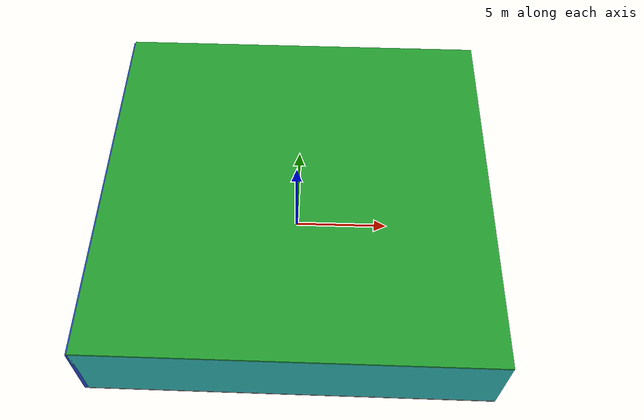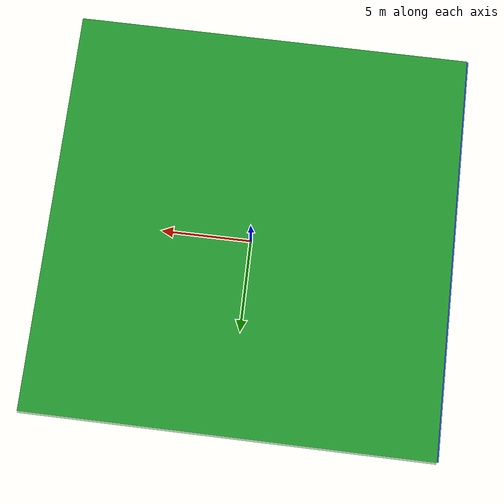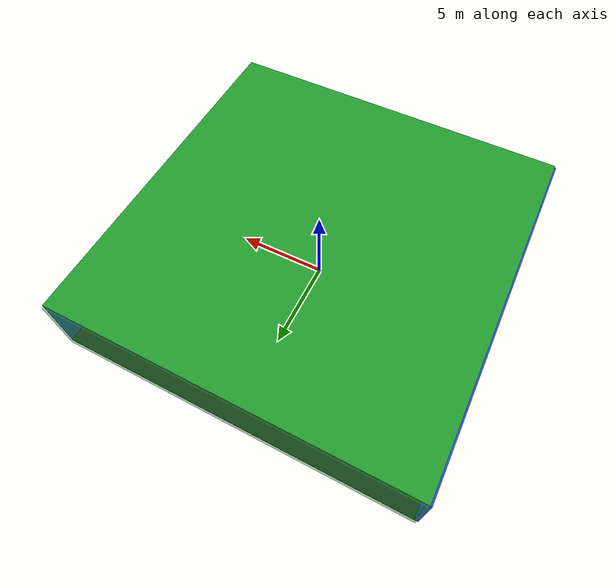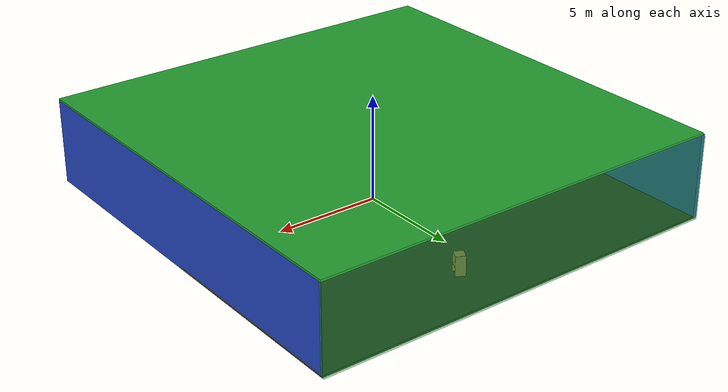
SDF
<sdf version="1.4">
 <world name="default">
  <physics type="ode">
   <max_step_size>0.001</max_step_size>
   <real_time_factor>1</real_time_factor>
   <real_time_update_rate>1000</real_time_update_rate>
   <gravity>0 0 -9.8</gravity>
  </physics>
  <scene><ambient>0.4 0.4 0.4 1</ambient><background>0.7 0.7 0.7 1</background><shadows>1</shadows></scene>
  <model name="Surrounding">
   <static>1</static>
   <link name="Ceiling">
    <collision name="Ceiling_Collision"><geometry><box><size>20 20 0.1</size></box></geometry></collision>
    <visual name="Ceiling_Visual">
     <geometry><box><size>20 20 0.1</size></box></geometry>
     <material>
      <script><uri>file://media/materials/scripts/gazebo.material</uri><name>Gazebo/Green</name></script>
     </material>
    </visual>
    <pose>0 0 4.05 0 0 0</pose>
   </link>
   <link name="Wall_South">
    <collision name="Wall_South_Collision">
     <geometry><box><size>20 0 4</size></box></geometry>
     <pose>0 0 2 0 -0 0</pose>
    </collision>
    <visual name="Wall_South_Visual">
     <pose>0 0 2 0 -0 0</pose>
     <geometry><box><size>20 0 4</size></box></geometry>
     <material>
      <script><uri>file://media/materials/scripts/gazebo.material</uri><name>Gazebo/TurquoiseGlow</name></script>
     </material>
    </visual>
    <velocity_decay><linear>0</linear><angular>0</angular></velocity_decay>
    <pose>0 -10 0 0 -0 0</pose>
   </link>
   <link name="Wall_East">
    <collision name="Wall_21_Collision">
     <geometry><box><size>20 0 4</size></box></geometry>
     <pose>0 0 2 0 -0 0</pose>
    </collision>
    <visual name="Wall_21_Visual">
     <pose>0 0 2 0 -0 0</pose>
     <geometry><box><size>20 0 4</size></box></geometry>
     <material>
      <script><uri>file://media/materials/scripts/gazebo.material</uri><name>Gazebo/BlueLaser</name></script>
     </material>
    </visual>
    <velocity_decay><linear>0</linear><angular>0</angular></velocity_decay>
    <pose>10 0 0 0 -0 1.5708</pose>
   </link>
   <link name="Wall_North">
    <collision name="Wall_22_Collision">
     <geometry><box><size>20 0.2 4</size></box></geometry>
     <pose>0 0 2 0 -0 0</pose>
    </collision>
    <visual name="Wall_22_Visual">
     <pose>0 0 2 0 -0 0</pose>
     <geometry><box><size>20 0.2 4</size></box></geometry>
     <material>
      <script><uri>file://media/materials/scripts/gazebo.material</uri><name>Gazebo/GreenTransparent</name></script>
     </material>
    </visual>
    <velocity_decay><linear>0</linear><angular>0</angular></velocity_decay>
    <pose>0 10 0 0 -0 0</pose>
   </link>
   <link name="Wall_West">
    <collision name="Wall_23_Collision">
     <geometry><box><size>20 0.2 4</size></box></geometry>
     <pose>0 0 2 0 -0 0</pose>
    </collision>
    <visual name="Wall_23_Visual">
     <pose>0 0 2 0 -0 0</pose>
     <geometry><box><size>20 0.2 4</size></box></geometry>
     <material>
      <script><uri>file://media/materials/scripts/gazebo.material</uri><name>Gazebo/BlueGlow</name></script>
     </material>
    </visual>
    <velocity_decay><linear>0</linear><angular>0</angular></velocity_decay>
    <pose>-10 0 0 0 0 -1.5708</pose>
   </link>
   <link name="Ground_link">
    <collision name="collision">
     <pose>0 0 .05 0 -0 0</pose>
     <geometry><box><size>20 20 0.1</size></box></geometry>
    </collision>
    <visual name="visual">
     <pose>0 0 .05 0 -0 0</pose>
     <geometry><box><size>20 20 0.1</size></box></geometry>
     <material>
      <script><uri>file://media/materials/scripts/gazebo.material</uri><name>Gazebo/Black</name></script>
     </material>
    </visual>
   </link>
   <static>1</static>
  </model>
  <spherical_coordinates>
   <surface_model>EARTH_WGS84</surface_model>
   <latitude_deg>0</latitude_deg>
   <longitude_deg>0</longitude_deg>
   <elevation>0</elevation>
   <heading_deg>0</heading_deg>
  </spherical_coordinates>
  <light name="lightball_0" type="diffuse">
   <diffuse>0.8 0.8 0.8 1</diffuse>
   <specular>0.2 0.2 0.2 1</specular>
   <attenuation>
    <range>100</range>
    <constant>0.7</constant>
    <linear>0.01</linear>
    <quadratic>0.001</quadratic>
   </attenuation>
   <direction>-0.5 0.1 -0.9</direction>
   <pose>7.50677489312 6.45963297361 3.71151498252 0 0 0</pose>
  </light>
  <light name="lightball_1" type="diffuse">
   <diffuse>0.8 0.8 0.8 1</diffuse>
   <specular>0.2 0.2 0.2 1</specular>
   <attenuation>
    <range>100</range>
    <constant>0.7</constant>
    <linear>0.01</linear>
    <quadratic>0.001</quadratic>
   </attenuation>
   <direction>-0.5 0.1 -0.9</direction>
   <pose>8.4167328467 9.83459986714 2.84797232259 0 0 0</pose>
  </light>
  <light name="lightball_2" type="diffuse">
   <diffuse>0.8 0.8 0.8 1</diffuse>
   <specular>0.2 0.2 0.2 1</specular>
   <attenuation>
    <range>100</range>
    <constant>0.7</constant>
    <linear>0.01</linear>
    <quadratic>0.001</quadratic>
   </attenuation>
   <direction>-0.5 0.1 -0.9</direction>
   <pose>-0.47750726371 -6.30255696957 1.12036382907 0 0 0</pose>
  </light>
  <light name="lightball_3" type="diffuse">
   <diffuse>0.8 0.8 0.8 1</diffuse>
   <specular>0.2 0.2 0.2 1</specular>
   <attenuation>
    <range>100</range>
    <constant>0.7</constant>
    <linear>0.01</linear>
    <quadratic>0.001</quadratic>
   </attenuation>
   <direction>-0.5 0.1 -0.9</direction>
   <pose>-8.17718966934 -3.57069463384 2.48088255087 0 0 0</pose>
  </light>
  <include><uri>model://table</uri><pose>-6.98653058586 1.46756515628 0 0 0 2.09094820107</pose></include>
  <include>
   <uri>model://textured_shapes</uri>
   <pose>1.25975615044 -6.73964255209 0 0 0 0.473255078156</pose>
  </include>
  <include><uri>model://cabinet</uri><pose>1.35149066099 7.47453606522 0 0 0 2.67274337216</pose></include>
 </world>
</sdf>

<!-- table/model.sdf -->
<sdf version="1.5">
  <model name="table">
    <static>true</static>
    <link name="link">
      <collision name="surface">
        <pose>0 0 1.0 0 0 0</pose>
        <geometry>
          <box>
            <size>1.5 0.8 0.03</size>
          </box>
        </geometry>
        <surface>
          <friction>
            <ode>
              <mu>0.6</mu>
              <mu2>0.6</mu2>
            </ode>
          </friction>
        </surface>
      </collision>
      <visual name="visual1">
        <pose>0 0 1.0 0 0 0</pose>
        <geometry>
          <box>
            <size>1.5 0.8 0.03</size>
          </box>
        </geometry>
        <material>
          <script>
            <uri>model://media/materials/scripts/gazebo.material</uri>
            <name>Gazebo/Wood</name>
          </script>
        </material>
      </visual>
      <collision name="front_left_leg">
        <pose>0.68 0.38 0.5 0 0 0</pose>
        <geometry>
          <cylinder>
            <radius>0.02</radius>
            <length>1.0</length>
          </cylinder>
        </geometry>
      </collision>
      <visual name="front_left_leg">
        <pose>0.68 0.38 0.5 0 0 0</pose>
        <geometry>
          <cylinder>
            <radius>0.02</radius>
            <length>1.0</length>
          </cylinder>
        </geometry>
        <material>
          <script>
            <uri>model://media/materials/scripts/gazebo.material</uri>
            <name>Gazebo/Grey</name>
          </script>
        </material>
      </visual>
      <collision name="front_right_leg">
        <pose>0.68 -0.38 0.5 0 0 0</pose>
        <geometry>
          <cylinder>
            <radius>0.02</radius>
            <length>1.0</length>
          </cylinder>
        </geometry>
      </collision>
      <visual name="front_right_leg">
        <pose>0.68 -0.38 0.5 0 0 0</pose>
        <geometry>
          <cylinder>
            <radius>0.02</radius>
            <length>1.0</length>
          </cylinder>
        </geometry>
        <material>
          <script>
            <uri>model://media/materials/scripts/gazebo.material</uri>
            <name>Gazebo/Grey</name>
          </script>
        </material>
      </visual>
      <collision name="back_right_leg">
        <pose>-0.68 -0.38 0.5 0 0 0</pose>
        <geometry>
          <cylinder>
            <radius>0.02</radius>
            <length>1.0</length>
          </cylinder>
        </geometry>
      </collision>
      <visual name="back_right_leg">
        <pose>-0.68 -0.38 0.5 0 0 0</pose>
        <geometry>
          <cylinder>
            <radius>0.02</radius>
            <length>1.0</length>
          </cylinder>
        </geometry>
        <material>
          <script>
            <uri>model://media/materials/scripts/gazebo.material</uri>
            <name>Gazebo/Grey</name>
          </script>
        </material>
      </visual>
      <collision name="back_left_leg">
        <pose>-0.68 0.38 0.5 0 0 0</pose>
        <geometry>
          <cylinder>
            <radius>0.02</radius>
            <length>1.0</length>
          </cylinder>
        </geometry>
      </collision>
      <visual name="back_left_leg">
        <pose>-0.68 0.38 0.5 0 0 0</pose>
        <geometry>
          <cylinder>
            <radius>0.02</radius>
            <length>1.0</length>
          </cylinder>
        </geometry>
        <material>
          <script>
            <uri>model://media/materials/scripts/gazebo.material</uri>
            <name>Gazebo/Grey</name>
          </script>
        </material>
      </visual>
    </link>
  </model>
</sdf>

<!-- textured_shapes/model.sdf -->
<sdf version="1.6">
  <model name="textured_shapes">
    <pose>0 0 0.5 0 0 0</pose>
    <link name="box">
      <pose>0 -1.5 0 0 0 0</pose>
      <collision name="collision">
        <geometry>
          <box>
            <size>1 1 1</size>
          </box>
        </geometry>
      </collision>
      <visual name="visual">
        <geometry>
          <box>
            <size>1 1 1</size>
          </box>
        </geometry>
        <material>
          <script>
            <uri>model://../model_source/models/textured_shapes/materials/scripts</uri>
            <uri>model://../model_source/models/textured_shapes/materials/textures</uri>
            <name>TexturedShape/Squares</name>
          </script>
        </material>
      </visual>
    </link>
    <link name="sphere">
      <collision name="collision">
        <geometry>
          <sphere>
            <radius>0.5</radius>
          </sphere>
        </geometry>
      </collision>
      <visual name="visual">
        <geometry>
          <sphere>
            <radius>0.5</radius>
          </sphere>
        </geometry>
        <material>
          <script>
            <uri>model://../model_source/models/textured_shapes/materials/scripts</uri>
            <uri>model://../model_source/models/textured_shapes/materials/textures</uri>
            <name>TexturedShape/Squares</name>
          </script>
        </material>
      </visual>
    </link>
    <link name="cylinder">
      <pose>0 1.5 0 0 0 0</pose>
      <collision name="collision">
        <geometry>
          <cylinder>
            <radius>0.5</radius>
            <length>1</length>
          </cylinder>
        </geometry>
      </collision>
      <visual name="visual">
        <geometry>
          <cylinder>
            <radius>0.5</radius>
            <length>1</length>
          </cylinder>
        </geometry>
        <material>
          <script>
            <uri>model://../model_source/models/textured_shapes/materials/scripts</uri>
            <uri>model://../model_source/models/textured_shapes/materials/textures</uri>
            <name>TexturedShape/Squares</name>
          </script>
        </material>
      </visual>
    </link>
  </model>
</sdf>

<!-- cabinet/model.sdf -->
<sdf version="1.5">
  <model name="cabinet">
    <static>true</static>
    <link name="cabinet_bottom_plate">
      <inertial>
        <pose>0 0 -1 0 0 0</pose>
        <inertia>
          <ixx>2.050000</ixx>
          <ixy>0</ixy>
          <ixz>0</ixz>
          <iyy>2.050000</iyy>
          <iyz>0</iyz>
          <izz>2.050000</izz>
        </inertia>
        <mass>25.000000</mass>
      </inertial>
      <collision name="cabinet_bottom_plate_geom">
        <pose>0 0 0.010000 0 0 0</pose>
        <geometry>
          <box>
            <size>0.450000 0.450000 0.020000</size>
          </box>
        </geometry>
      </collision>
      <visual name="cabinet_bottom_plate_geom_visual">
        <pose>0 0 0.010000 0 0 0</pose>
        <geometry>
          <box>
            <size>0.450000 0.450000 0.020000</size>
          </box>
        </geometry>
        <material>
          <script>
            <uri>model://media/materials/scripts/gazebo.material</uri>
            <name>Gazebo/Wood</name>
          </script>
        </material>
      </visual>
      <collision name="cabinet_bottom_plate_geom_cabinet_back_plate">
        <pose>0.235000 0 0.510000 0 0 0</pose>
        <geometry>
          <box>
            <size>0.020000 0.450000 1.020000</size>
          </box>
        </geometry>
      </collision>
      <visual name="cabinet_bottom_plate_geom_cabinet_back_plate_visual">
        <pose>0.235000 0 0.510000 0 0 0</pose>
        <geometry>
          <box>
            <size>0.020000 0.450000 1.020000</size>
          </box>
        </geometry>
        <material>
          <script>
            <uri>model://media/materials/scripts/gazebo.material</uri>
            <name>Gazebo/Wood</name>
          </script>
        </material>
      </visual>
      <collision name="cabinet_bottom_plate_geom_cabinet_left_plate">
        <pose>0 0.235000 0.510000 0 0 0</pose>
        <geometry>
          <box>
            <size>0.450000 0.020000 1.020000</size>
          </box>
        </geometry>
      </collision>
      <visual name="cabinet_bottom_plate_geom_cabinet_left_plate_visual">
        <pose>0 0.235000 0.510000 0 0 0</pose>
        <geometry>
          <box>
            <size>0.450000 0.020000 1.020000</size>
          </box>
        </geometry>
        <material>
          <script>
            <uri>model://media/materials/scripts/gazebo.material</uri>
            <name>Gazebo/Wood</name>
          </script>
        </material>
      </visual>
      <collision name="cabinet_bottom_plate_geom_cabinet_middle_plate">
        <pose>0 0 0.510000 0 0 0</pose>
        <geometry>
          <box>
            <size>0.450000 0.450000 0.020000</size>
          </box>
        </geometry>
      </collision>
      <visual name="cabinet_bottom_plate_geom_cabinet_middle_plate_visual">
        <pose>0 0 0.510000 0 0 0</pose>
        <geometry>
          <box>
            <size>0.450000 0.450000 0.020000</size>
          </box>
        </geometry>
        <material>
          <script>
            <uri>model://media/materials/scripts/gazebo.material</uri>
            <name>Gazebo/Wood</name>
          </script>
        </material>
      </visual>
      <collision name="cabinet_bottom_plate_geom_cabinet_right_plate">
        <pose>0 -0.235000 0.510000 0 0 0</pose>
        <geometry>
          <box>
            <size>0.450000 0.020000 1.020000</size>
          </box>
        </geometry>
      </collision>
      <visual name="cabinet_bottom_plate_geom_cabinet_right_plate_visual">
        <pose>0 -0.235000 0.510000 0 0 0</pose>
        <geometry>
          <box>
            <size>0.450000 0.020000 1.020000</size>
          </box>
        </geometry>
        <material>
          <script>
            <uri>model://media/materials/scripts/gazebo.material</uri>
            <name>Gazebo/Wood</name>
          </script>
        </material>
      </visual>
      <collision name="cabinet_bottom_plate_geom_cabinet_top_plate">
        <pose>0 0 1.010000 0 0 0</pose>
        <geometry>
          <box>
            <size>0.450000 0.450000 0.020000</size>
          </box>
        </geometry>
      </collision>
      <visual name="cabinet_bottom_plate_geom_cabinet_top_plate_visual">
        <pose>0 0 1.010000 0 0 0</pose>
        <geometry>
          <box>
            <size>0.450000 0.450000 0.020000</size>
          </box>
        </geometry>
        <material>
          <script>
            <uri>model://media/materials/scripts/gazebo.material</uri>
            <name>Gazebo/Wood</name>
          </script>
        </material>
      </visual>
    </link>
  </model>
</sdf>
